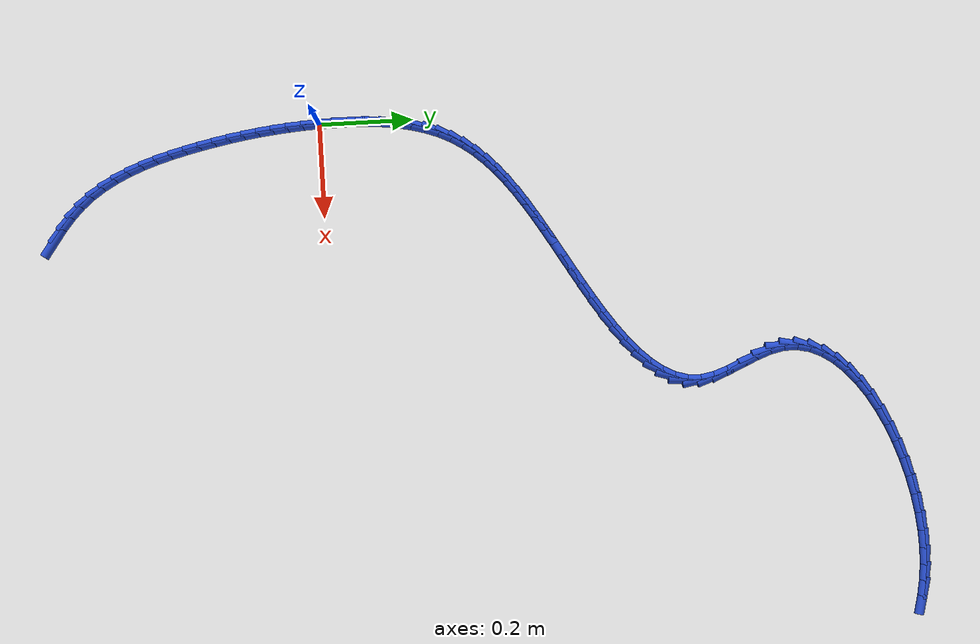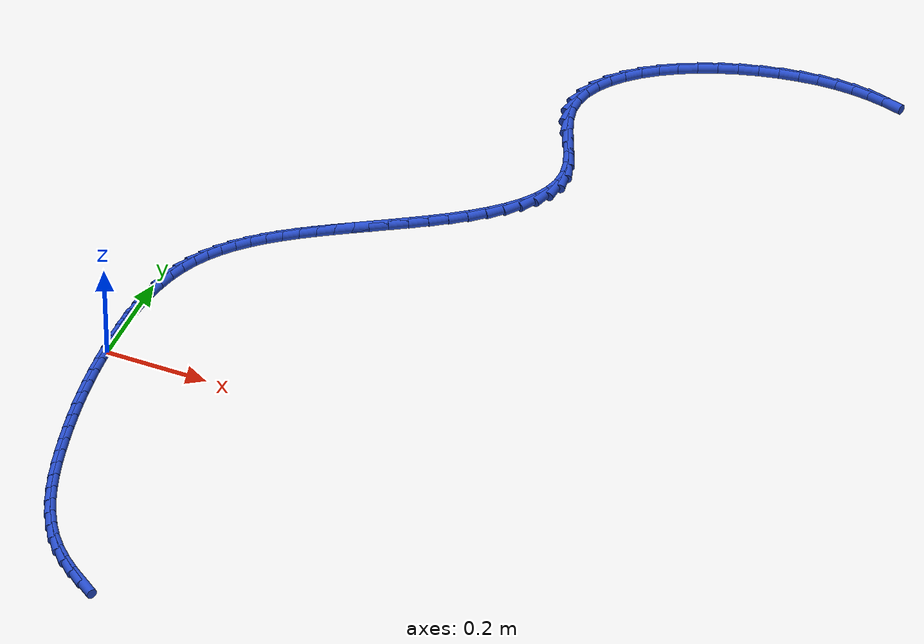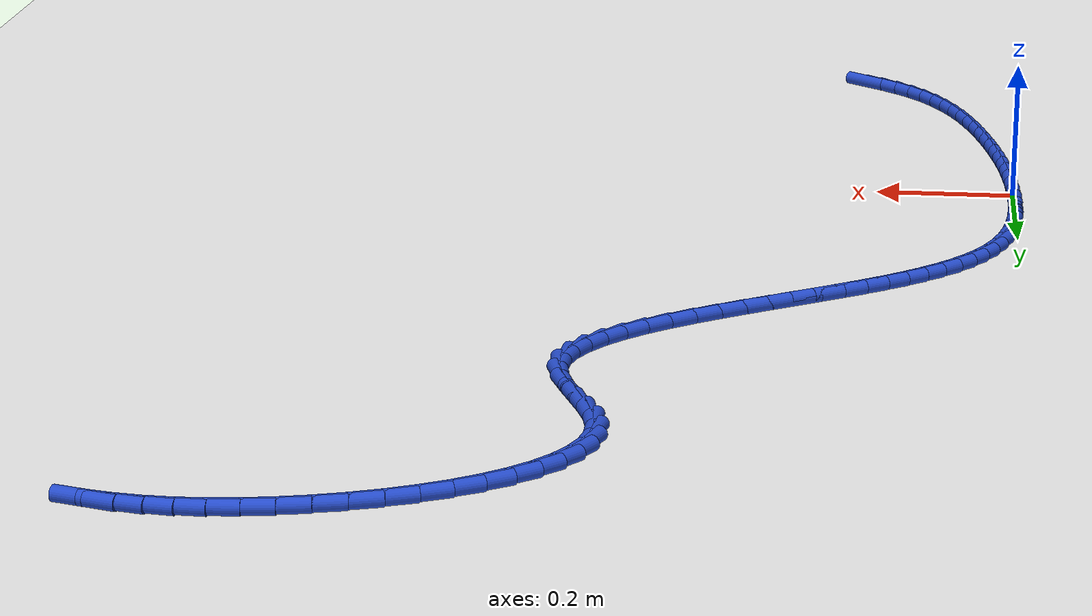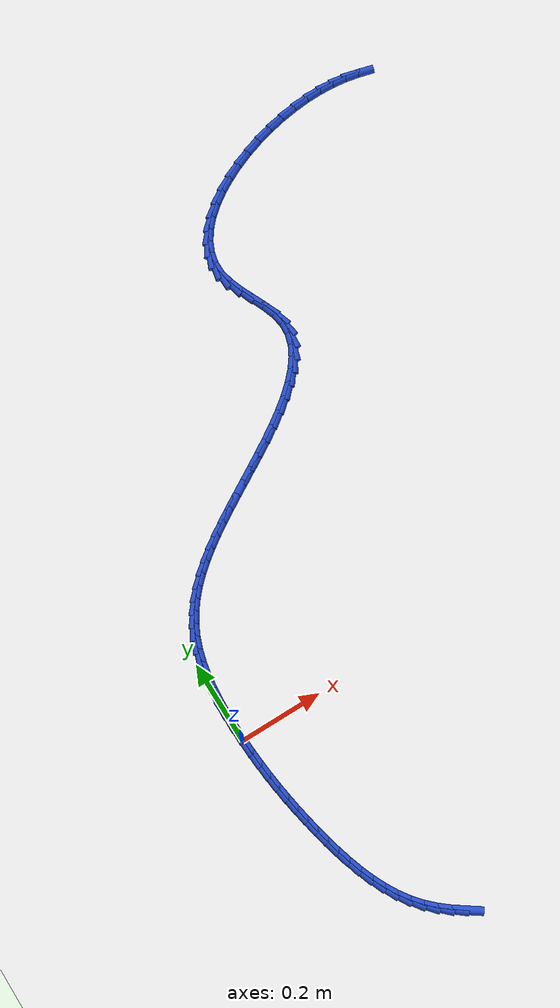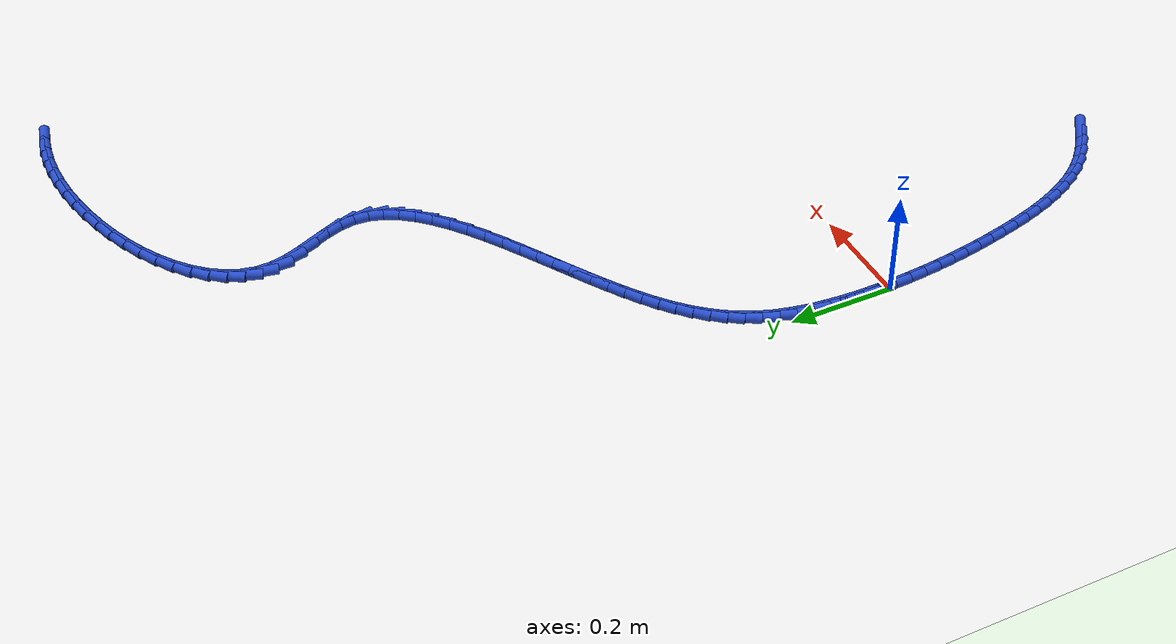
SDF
<sdf version="1.6">
 <world name="default">
  <model name="ground_plane">
   <static>1</static>
   <link name="link">
    <collision name="collision">
     <geometry><plane><normal>0 0 1</normal><size>100 100</size></plane></geometry>
     <surface><friction><ode><mu>100</mu><mu2>50</mu2></ode></friction></surface>
    </collision>
    <visual name="visual">
     <cast_shadows>0</cast_shadows>
     <geometry><plane><normal>0 0 1</normal><size>100 100</size></plane></geometry>
     <material>
      <script><uri>file://media/materials/scripts/gazebo.material</uri><name>Gazebo/WhiteGlow</name></script>
     </material>
    </visual>
   </link>
  </model>
  <model name="line">
   <link name="link_0">
    <pose>1.0625181290357943e-17 7.632783294297951e-17 0.01 0 1.57 -1.5450315939455772</pose>
    <collision name="collision">
     <geometry><cylinder><radius>0.01</radius><length>0.08</length></cylinder></geometry>
    </collision>
    <visual name="visual">
     <material>
      <script><name>Gazebo/Blue</name><uri>file://media/materials/scripts/gazebo.material</uri></script>
     </material>
     <geometry><cylinder><radius>0.01</radius><length>0.08</length></cylinder></geometry>
    </visual>
   </link>
   <link name="link_1">
    <pose>-0.0008484708974147878 0.032924197183430516 0.01 0 1.57 1.5680683495373235</pose>
    <collision name="collision">
     <geometry><cylinder><radius>0.01</radius><length>0.08</length></cylinder></geometry>
    </collision>
    <visual name="visual">
     <material>
      <script><name>Gazebo/Blue</name><uri>file://media/materials/scripts/gazebo.material</uri></script>
     </material>
     <geometry><cylinder><radius>0.01</radius><length>0.08</length></cylinder></geometry>
    </visual>
   </link>
   <link name="link_2">
    <pose>-0.0007579796227774928 0.0660956797944067 0.01 0 1.57 1.5330769587160282</pose>
    <collision name="collision">
     <geometry><cylinder><radius>0.01</radius><length>0.08</length></cylinder></geometry>
    </collision>
    <visual name="visual">
     <material>
      <script><name>Gazebo/Blue</name><uri>file://media/materials/scripts/gazebo.material</uri></script>
     </material>
     <geometry><cylinder><radius>0.01</radius><length>0.08</length></cylinder></geometry>
    </visual>
   </link>
   <link name="link_3">
    <pose>0.0004919246648883151 0.09921689914808471 0.01 0 1.57 1.4907269644413075</pose>
    <collision name="collision">
     <geometry><cylinder><radius>0.01</radius><length>0.08</length></cylinder></geometry>
    </collision>
    <visual name="visual">
     <material>
      <script><name>Gazebo/Blue</name><uri>file://media/materials/scripts/gazebo.material</uri></script>
     </material>
     <geometry><cylinder><radius>0.01</radius><length>0.08</length></cylinder></geometry>
    </visual>
   </link>
   <link name="link_4">
    <pose>0.0031216928065590597 0.13199030655962074 0.01 0 1.57 1.439886070392241</pose>
    <collision name="collision">
     <geometry><cylinder><radius>0.01</radius><length>0.08</length></cylinder></geometry>
    </collision>
    <visual name="visual">
     <material>
      <script><name>Gazebo/Blue</name><uri>file://media/materials/scripts/gazebo.material</uri></script>
     </material>
     <geometry><cylinder><radius>0.01</radius><length>0.08</length></cylinder></geometry>
    </visual>
   </link>
   <link name="link_5">
    <pose>0.007351775643211166 0.1641183533441709 0.01 0 1.57 1.3791478052844761</pose>
    <collision name="collision">
     <geometry><cylinder><radius>0.01</radius><length>0.08</length></cylinder></geometry>
    </collision>
    <visual name="visual">
     <material>
      <script><name>Gazebo/Blue</name><uri>file://media/materials/scripts/gazebo.material</uri></script>
     </material>
     <geometry><cylinder><radius>0.01</radius><length>0.08</length></cylinder></geometry>
    </visual>
   </link>
   <link name="link_6">
    <pose>0.013402624015821053 0.19530349081689147 0.01 0 1.57 1.3068665840910743</pose>
    <collision name="collision">
     <geometry><cylinder><radius>0.01</radius><length>0.08</length></cylinder></geometry>
    </collision>
    <visual name="visual">
     <material>
      <script><name>Gazebo/Blue</name><uri>file://media/materials/scripts/gazebo.material</uri></script>
     </material>
     <geometry><cylinder><radius>0.01</radius><length>0.08</length></cylinder></geometry>
    </visual>
   </link>
   <link name="link_7">
    <pose>0.021494688765365148 0.22524817029293834 0.01 0 1.57 1.221278306727714</pose>
    <collision name="collision">
     <geometry><cylinder><radius>0.01</radius><length>0.08</length></cylinder></geometry>
    </collision>
    <visual name="visual">
     <material>
      <script><name>Gazebo/Blue</name><uri>file://media/materials/scripts/gazebo.material</uri></script>
     </material>
     <geometry><cylinder><radius>0.01</radius><length>0.08</length></cylinder></geometry>
    </visual>
   </link>
   <link name="link_8">
    <pose>0.031848420732819856 0.2536548430874677 0.01 0 1.57 1.122448645617586</pose>
    <collision name="collision">
     <geometry><cylinder><radius>0.01</radius><length>0.08</length></cylinder></geometry>
    </collision>
    <visual name="visual">
     <material>
      <script><name>Gazebo/Blue</name><uri>file://media/materials/scripts/gazebo.material</uri></script>
     </material>
     <geometry><cylinder><radius>0.01</radius><length>0.08</length></cylinder></geometry>
    </visual>
   </link>
   <link name="link_9">
    <pose>0.044650600942844926 0.2802695613152772 0.01 0 1.57 1.0224471368903416</pose>
    <collision name="collision">
     <geometry><cylinder><radius>0.01</radius><length>0.08</length></cylinder></geometry>
    </collision>
    <visual name="visual">
     <material>
      <script><name>Gazebo/Blue</name><uri>file://media/materials/scripts/gazebo.material</uri></script>
     </material>
     <geometry><cylinder><radius>0.01</radius><length>0.08</length></cylinder></geometry>
    </visual>
   </link>
   <link name="link_10">
    <pose>0.05984798389931778 0.30514919994041223 0.01 0 1.57 0.9291403538744517</pose>
    <collision name="collision">
     <geometry><cylinder><radius>0.01</radius><length>0.08</length></cylinder></geometry>
    </collision>
    <visual name="visual">
     <material>
      <script><name>Gazebo/Blue</name><uri>file://media/materials/scripts/gazebo.material</uri></script>
     </material>
     <geometry><cylinder><radius>0.01</radius><length>0.08</length></cylinder></geometry>
    </visual>
   </link>
   <link name="link_11">
    <pose>0.07728309836895332 0.3284856012650455 0.01 0 1.57 0.8448598932030486</pose>
    <collision name="collision">
     <geometry><cylinder><radius>0.01</radius><length>0.08</length></cylinder></geometry>
    </collision>
    <visual name="visual">
     <material>
      <script><name>Gazebo/Blue</name><uri>file://media/materials/scripts/gazebo.material</uri></script>
     </material>
     <geometry><cylinder><radius>0.01</radius><length>0.08</length></cylinder></geometry>
    </visual>
   </link>
   <link name="link_12">
    <pose>0.09679804924913331 0.3504711564818364 0.01 0 1.57 0.7709709987590738</pose>
    <collision name="collision">
     <geometry><cylinder><radius>0.01</radius><length>0.08</length></cylinder></geometry>
    </collision>
    <visual name="visual">
     <material>
      <script><name>Gazebo/Blue</name><uri>file://media/materials/scripts/gazebo.material</uri></script>
     </material>
     <geometry><cylinder><radius>0.01</radius><length>0.08</length></cylinder></geometry>
    </visual>
   </link>
   <link name="link_13">
    <pose>0.11823494143723934 0.3712982567834442 0.01 0 1.57 0.7079927795087475</pose>
    <collision name="collision">
     <geometry><cylinder><radius>0.01</radius><length>0.08</length></cylinder></geometry>
    </collision>
    <visual name="visual">
     <material>
      <script><name>Gazebo/Blue</name><uri>file://media/materials/scripts/gazebo.material</uri></script>
     </material>
     <geometry><cylinder><radius>0.01</radius><length>0.08</length></cylinder></geometry>
    </visual>
   </link>
   <link name="link_14">
    <pose>0.14143587983065312 0.39115929336252836 0.01 0 1.57 0.6558219254184303</pose>
    <collision name="collision">
     <geometry><cylinder><radius>0.01</radius><length>0.08</length></cylinder></geometry>
    </collision>
    <visual name="visual">
     <material>
      <script><name>Gazebo/Blue</name><uri>file://media/materials/scripts/gazebo.material</uri></script>
     </material>
     <geometry><cylinder><radius>0.01</radius><length>0.08</length></cylinder></geometry>
    </visual>
   </link>
   <link name="link_15">
    <pose>0.1662429693267564 0.4102466574117484 0.01 0 1.57 0.6139736487818335</pose>
    <collision name="collision">
     <geometry><cylinder><radius>0.01</radius><length>0.08</length></cylinder></geometry>
    </collision>
    <visual name="visual">
     <material>
      <script><name>Gazebo/Blue</name><uri>file://media/materials/scripts/gazebo.material</uri></script>
     </material>
     <geometry><cylinder><radius>0.01</radius><length>0.08</length></cylinder></geometry>
    </visual>
   </link>
   <link name="link_16">
    <pose>0.1924983148229308 0.42875274012376374 0.01 0 1.57 0.581778861898263</pose>
    <collision name="collision">
     <geometry><cylinder><radius>0.01</radius><length>0.08</length></cylinder></geometry>
    </collision>
    <visual name="visual">
     <material>
      <script><name>Gazebo/Blue</name><uri>file://media/materials/scripts/gazebo.material</uri></script>
     </material>
     <geometry><cylinder><radius>0.01</radius><length>0.08</length></cylinder></geometry>
    </visual>
   </link>
   <link name="link_17">
    <pose>0.2200440212165581 0.4468699326912337 0.01 0 1.57 0.5585199745004578</pose>
    <collision name="collision">
     <geometry><cylinder><radius>0.01</radius><length>0.08</length></cylinder></geometry>
    </collision>
    <visual name="visual">
     <material>
      <script><name>Gazebo/Blue</name><uri>file://media/materials/scripts/gazebo.material</uri></script>
     </material>
     <geometry><cylinder><radius>0.01</radius><length>0.08</length></cylinder></geometry>
    </visual>
   </link>
   <link name="link_18">
    <pose>0.24872219340501994 0.4647906263068178 0.01 0 1.57 0.5435118615986578</pose>
    <collision name="collision">
     <geometry><cylinder><radius>0.01</radius><length>0.08</length></cylinder></geometry>
    </collision>
    <visual name="visual">
     <material>
      <script><name>Gazebo/Blue</name><uri>file://media/materials/scripts/gazebo.material</uri></script>
     </material>
     <geometry><cylinder><radius>0.01</radius><length>0.08</length></cylinder></geometry>
    </visual>
   </link>
   <link name="link_19">
    <pose>0.2783749362856981 0.48270721216317536 0.01 0 1.57 0.5361424447199818</pose>
    <collision name="collision">
     <geometry><cylinder><radius>0.01</radius><length>0.08</length></cylinder></geometry>
    </collision>
    <visual name="visual">
     <material>
      <script><name>Gazebo/Blue</name><uri>file://media/materials/scripts/gazebo.material</uri></script>
     </material>
     <geometry><cylinder><radius>0.01</radius><length>0.08</length></cylinder></geometry>
    </visual>
   </link>
   <link name="link_20">
    <pose>0.3088443547559741 0.500812081452966 0.01 0 1.57 0.5358866651339143</pose>
    <collision name="collision">
     <geometry><cylinder><radius>0.01</radius><length>0.08</length></cylinder></geometry>
    </collision>
    <visual name="visual">
     <material>
      <script><name>Gazebo/Blue</name><uri>file://media/materials/scripts/gazebo.material</uri></script>
     </material>
     <geometry><cylinder><radius>0.01</radius><length>0.08</length></cylinder></geometry>
    </visual>
   </link>
   <link name="link_21">
    <pose>0.33997255371323 0.5192976253688489 0.01 0 1.57 0.5423041037000075</pose>
    <collision name="collision">
     <geometry><cylinder><radius>0.01</radius><length>0.08</length></cylinder></geometry>
    </collision>
    <visual name="visual">
     <material>
      <script><name>Gazebo/Blue</name><uri>file://media/materials/scripts/gazebo.material</uri></script>
     </material>
     <geometry><cylinder><radius>0.01</radius><length>0.08</length></cylinder></geometry>
    </visual>
   </link>
   <link name="link_22">
    <pose>0.3716016380548469 0.5383562351034835 0.01 0 1.57 0.5552104559346642</pose>
    <collision name="collision">
     <geometry><cylinder><radius>0.01</radius><length>0.08</length></cylinder></geometry>
    </collision>
    <visual name="visual">
     <material>
      <script><name>Gazebo/Blue</name><uri>file://media/materials/scripts/gazebo.material</uri></script>
     </material>
     <geometry><cylinder><radius>0.01</radius><length>0.08</length></cylinder></geometry>
    </visual>
   </link>
   <link name="link_23">
    <pose>0.4035504675887567 0.5581740081163631 0.01 0 1.57 0.5771610278812183</pose>
    <collision name="collision">
     <geometry><cylinder><radius>0.01</radius><length>0.08</length></cylinder></geometry>
    </collision>
    <visual name="visual">
     <material>
      <script><name>Gazebo/Blue</name><uri>file://media/materials/scripts/gazebo.material</uri></script>
     </material>
     <geometry><cylinder><radius>0.01</radius><length>0.08</length></cylinder></geometry>
    </visual>
   </link>
   <link name="link_24">
    <pose>0.4352969522460977 0.5788447278514872 0.01 0 1.57 0.6110136186493721</pose>
    <collision name="collision">
     <geometry><cylinder><radius>0.01</radius><length>0.08</length></cylinder></geometry>
    </collision>
    <visual name="visual">
     <material>
      <script><name>Gazebo/Blue</name><uri>file://media/materials/scripts/gazebo.material</uri></script>
     </material>
     <geometry><cylinder><radius>0.01</radius><length>0.08</length></cylinder></geometry>
    </visual>
   </link>
   <link name="link_25">
    <pose>0.46606000570500145 0.6003920531224032 0.01 0 1.57 0.6588139061211348</pose>
    <collision name="collision">
     <geometry><cylinder><radius>0.01</radius><length>0.08</length></cylinder></geometry>
    </collision>
    <visual name="visual">
     <material>
      <script><name>Gazebo/Blue</name><uri>file://media/materials/scripts/gazebo.material</uri></script>
     </material>
     <geometry><cylinder><radius>0.01</radius><length>0.08</length></cylinder></geometry>
    </visual>
   </link>
   <link name="link_26">
    <pose>0.49505207661092077 0.6228378923002408 0.01 0 1.57 0.723883744061787</pose>
    <collision name="collision">
     <geometry><cylinder><radius>0.01</radius><length>0.08</length></cylinder></geometry>
    </collision>
    <visual name="visual">
     <material>
      <script><name>Gazebo/Blue</name><uri>file://media/materials/scripts/gazebo.material</uri></script>
     </material>
     <geometry><cylinder><radius>0.01</radius><length>0.08</length></cylinder></geometry>
    </visual>
   </link>
   <link name="link_27">
    <pose>0.5214856136093086 0.6462041537561292 0.01 0 1.57 0.8111570701258786</pose>
    <collision name="collision">
     <geometry><cylinder><radius>0.01</radius><length>0.08</length></cylinder></geometry>
    </collision>
    <visual name="visual">
     <material>
      <script><name>Gazebo/Blue</name><uri>file://media/materials/scripts/gazebo.material</uri></script>
     </material>
     <geometry><cylinder><radius>0.01</radius><length>0.08</length></cylinder></geometry>
    </visual>
   </link>
   <link name="link_28">
    <pose>0.5445730653456173 0.6705127458611976 0.01 0 1.57 0.9273156854958221</pose>
    <collision name="collision">
     <geometry><cylinder><radius>0.01</radius><length>0.08</length></cylinder></geometry>
    </collision>
    <visual name="visual">
     <material>
      <script><name>Gazebo/Blue</name><uri>file://media/materials/scripts/gazebo.material</uri></script>
     </material>
     <geometry><cylinder><radius>0.01</radius><length>0.08</length></cylinder></geometry>
    </visual>
   </link>
   <link name="link_29">
    <pose>0.5635268804652999 0.6957855769865753 0.01 0 1.57 1.0800139831547968</pose>
    <collision name="collision">
     <geometry><cylinder><radius>0.01</radius><length>0.08</length></cylinder></geometry>
    </collision>
    <visual name="visual">
     <material>
      <script><name>Gazebo/Blue</name><uri>file://media/materials/scripts/gazebo.material</uri></script>
     </material>
     <geometry><cylinder><radius>0.01</radius><length>0.08</length></cylinder></geometry>
    </visual>
   </link>
   <link name="link_30">
    <pose>0.5775595076138088 0.7220445555033914 0.01 0 1.57 1.2745090172132927</pose>
    <collision name="collision">
     <geometry><cylinder><radius>0.01</radius><length>0.08</length></cylinder></geometry>
    </collision>
    <visual name="visual">
     <material>
      <script><name>Gazebo/Blue</name><uri>file://media/materials/scripts/gazebo.material</uri></script>
     </material>
     <geometry><cylinder><radius>0.01</radius><length>0.08</length></cylinder></geometry>
    </visual>
   </link>
   <link name="link_31">
    <pose>0.5858833954365971 0.7493115897827752 0.01 0 1.57 1.506299652841662</pose>
    <collision name="collision">
     <geometry><cylinder><radius>0.01</radius><length>0.08</length></cylinder></geometry>
    </collision>
    <visual name="visual">
     <material>
      <script><name>Gazebo/Blue</name><uri>file://media/materials/scripts/gazebo.material</uri></script>
     </material>
     <geometry><cylinder><radius>0.01</radius><length>0.08</length></cylinder></geometry>
    </visual>
   </link>
   <link name="link_32">
    <pose>0.587710992579117 0.7776085881958563 0.01 0 1.57 -1.396954214097311</pose>
    <collision name="collision">
     <geometry><cylinder><radius>0.01</radius><length>0.08</length></cylinder></geometry>
    </collision>
    <visual name="visual">
     <material>
      <script><name>Gazebo/Blue</name><uri>file://media/materials/scripts/gazebo.material</uri></script>
     </material>
     <geometry><cylinder><radius>0.01</radius><length>0.08</length></cylinder></geometry>
    </visual>
   </link>
   <link name="link_33">
    <pose>0.5825631102042446 0.8069220803345428 0.01 0 1.57 -1.2353781585562915</pose>
    <collision name="collision">
     <geometry><cylinder><radius>0.01</radius><length>0.08</length></cylinder></geometry>
    </collision>
    <visual name="visual">
     <material>
      <script><name>Gazebo/Blue</name><uri>file://media/materials/scripts/gazebo.material</uri></script>
     </material>
     <geometry><cylinder><radius>0.01</radius><length>0.08</length></cylinder></geometry>
    </visual>
   </link>
   <link name="link_34">
    <pose>0.5720798337416726 0.8369954490651901 0.01 0 1.57 -1.1596192470447129</pose>
    <collision name="collision">
     <geometry><cylinder><radius>0.01</radius><length>0.08</length></cylinder></geometry>
    </collision>
    <visual name="visual">
     <material>
      <script><name>Gazebo/Blue</name><uri>file://media/materials/scripts/gazebo.material</uri></script>
     </material>
     <geometry><cylinder><radius>0.01</radius><length>0.08</length></cylinder></geometry>
    </visual>
   </link>
   <link name="link_35">
    <pose>0.5587920275016804 0.867469877189067 0.01 0 1.57 -1.1526928461941084</pose>
    <collision name="collision">
     <geometry><cylinder><radius>0.01</radius><length>0.08</length></cylinder></geometry>
    </collision>
    <visual name="visual">
     <material>
      <script><name>Gazebo/Blue</name><uri>file://media/materials/scripts/gazebo.material</uri></script>
     </material>
     <geometry><cylinder><radius>0.01</radius><length>0.08</length></cylinder></geometry>
    </visual>
   </link>
   <link name="link_36">
    <pose>0.5452336360803327 0.8979861941027811 0.01 0 1.57 -1.2128854338016268</pose>
    <collision name="collision">
     <geometry><cylinder><radius>0.01</radius><length>0.08</length></cylinder></geometry>
    </collision>
    <visual name="visual">
     <material>
      <script><name>Gazebo/Blue</name><uri>file://media/materials/scripts/gazebo.material</uri></script>
     </material>
     <geometry><cylinder><radius>0.01</radius><length>0.08</length></cylinder></geometry>
    </visual>
   </link>
   <link name="link_37">
    <pose>0.533938604073693 0.9281852292029413 0.01 0 1.57 -1.353946783003777</pose>
    <collision name="collision">
     <geometry><cylinder><radius>0.01</radius><length>0.08</length></cylinder></geometry>
    </collision>
    <visual name="visual">
     <material>
      <script><name>Gazebo/Blue</name><uri>file://media/materials/scripts/gazebo.material</uri></script>
     </material>
     <geometry><cylinder><radius>0.01</radius><length>0.08</length></cylinder></geometry>
    </visual>
   </link>
   <link name="link_38">
    <pose>0.5274342516827468 0.95770836431507 0.01 0 1.57 -1.5666409314998242</pose>
    <collision name="collision">
     <geometry><cylinder><radius>0.01</radius><length>0.08</length></cylinder></geometry>
    </collision>
    <visual name="visual">
     <material>
      <script><name>Gazebo/Blue</name><uri>file://media/materials/scripts/gazebo.material</uri></script>
     </material>
     <geometry><cylinder><radius>0.01</radius><length>0.08</length></cylinder></geometry>
    </visual>
   </link>
   <link name="link_39">
    <pose>0.5273155464452515 0.9862747330538709 0.01 0 1.57 1.3567034762428667</pose>
    <collision name="collision">
     <geometry><cylinder><radius>0.01</radius><length>0.08</length></cylinder></geometry>
    </collision>
    <visual name="visual">
     <material>
      <script><name>Gazebo/Blue</name><uri>file://media/materials/scripts/gazebo.material</uri></script>
     </material>
     <geometry><cylinder><radius>0.01</radius><length>0.08</length></cylinder></geometry>
    </visual>
   </link>
   <link name="link_40">
    <pose>0.5332916888896341 1.0137607290116697 0.01 0 1.57 1.1569189082040678</pose>
    <collision name="collision">
     <geometry><cylinder><radius>0.01</radius><length>0.08</length></cylinder></geometry>
    </collision>
    <visual name="visual">
     <material>
      <script><name>Gazebo/Blue</name><uri>file://media/materials/scripts/gazebo.material</uri></script>
     </material>
     <geometry><cylinder><radius>0.01</radius><length>0.08</length></cylinder></geometry>
    </visual>
   </link>
   <link name="link_41">
    <pose>0.5448443693371267 1.0400617185647665 0.01 0 1.57 0.984548570773763</pose>
    <collision name="collision">
     <geometry><cylinder><radius>0.01</radius><length>0.08</length></cylinder></geometry>
    </collision>
    <visual name="visual">
     <material>
      <script><name>Gazebo/Blue</name><uri>file://media/materials/scripts/gazebo.material</uri></script>
     </material>
     <geometry><cylinder><radius>0.01</radius><length>0.08</length></cylinder></geometry>
    </visual>
   </link>
   <link name="link_42">
    <pose>0.5614552781089603 1.0650730680894596 0.01 0 1.57 0.8404321920779939</pose>
    <collision name="collision">
     <geometry><cylinder><radius>0.01</radius><length>0.08</length></cylinder></geometry>
    </collision>
    <visual name="visual">
     <material>
      <script><name>Gazebo/Blue</name><uri>file://media/materials/scripts/gazebo.material</uri></script>
     </material>
     <geometry><cylinder><radius>0.01</radius><length>0.08</length></cylinder></geometry>
    </visual>
   </link>
   <link name="link_43">
    <pose>0.5826061055263669 1.0886901439620487 0.01 0 1.57 0.7209026531881378</pose>
    <collision name="collision">
     <geometry><cylinder><radius>0.01</radius><length>0.08</length></cylinder></geometry>
    </collision>
    <visual name="visual">
     <material>
      <script><name>Gazebo/Blue</name><uri>file://media/materials/scripts/gazebo.material</uri></script>
     </material>
     <geometry><cylinder><radius>0.01</radius><length>0.08</length></cylinder></geometry>
    </visual>
   </link>
   <link name="link_44">
    <pose>0.6077785419105778 1.1108083125588326 0.01 0 1.57 0.6209870825993028</pose>
    <collision name="collision">
     <geometry><cylinder><radius>0.01</radius><length>0.08</length></cylinder></geometry>
    </collision>
    <visual name="visual">
     <material>
      <script><name>Gazebo/Blue</name><uri>file://media/materials/scripts/gazebo.material</uri></script>
     </material>
     <geometry><cylinder><radius>0.01</radius><length>0.08</length></cylinder></geometry>
    </visual>
   </link>
   <link name="link_45">
    <pose>0.6364542775828247 1.1313229402561102 0.01 0 1.57 0.5359956433028493</pose>
    <collision name="collision">
     <geometry><cylinder><radius>0.01</radius><length>0.08</length></cylinder></geometry>
    </collision>
    <visual name="visual">
     <material>
      <script><name>Gazebo/Blue</name><uri>file://media/materials/scripts/gazebo.material</uri></script>
     </material>
     <geometry><cylinder><radius>0.01</radius><length>0.08</length></cylinder></geometry>
    </visual>
   </link>
   <link name="link_46">
    <pose>0.6681150028643389 1.1501293934301813 0.01 0 1.57 0.46200400113984075</pose>
    <collision name="collision">
     <geometry><cylinder><radius>0.01</radius><length>0.08</length></cylinder></geometry>
    </collision>
    <visual name="visual">
     <material>
      <script><name>Gazebo/Blue</name><uri>file://media/materials/scripts/gazebo.material</uri></script>
     </material>
     <geometry><cylinder><radius>0.01</radius><length>0.08</length></cylinder></geometry>
    </visual>
   </link>
   <link name="link_47">
    <pose>0.7022424080763523 1.167123038457345 0.01 0 1.57 0.39584477258026385</pose>
    <collision name="collision">
     <geometry><cylinder><radius>0.01</radius><length>0.08</length></cylinder></geometry>
    </collision>
    <visual name="visual">
     <material>
      <script><name>Gazebo/Blue</name><uri>file://media/materials/scripts/gazebo.material</uri></script>
     </material>
     <geometry><cylinder><radius>0.01</radius><length>0.08</length></cylinder></geometry>
    </visual>
   </link>
   <link name="link_48">
    <pose>0.7383181835400964 1.1821992417138998 0.01 0 1.57 0.33494184119309933</pose>
    <collision name="collision">
     <geometry><cylinder><radius>0.01</radius><length>0.08</length></cylinder></geometry>
    </collision>
    <visual name="visual">
     <material>
      <script><name>Gazebo/Blue</name><uri>file://media/materials/scripts/gazebo.material</uri></script>
     </material>
     <geometry><cylinder><radius>0.01</radius><length>0.08</length></cylinder></geometry>
    </visual>
   </link>
   <link name="link_49">
    <pose>0.7758240195768021 1.1952533695761458 0.01 0 1.57 0.2771192331949611</pose>
    <collision name="collision">
     <geometry><cylinder><radius>0.01</radius><length>0.08</length></cylinder></geometry>
    </collision>
    <visual name="visual">
     <material>
      <script><name>Gazebo/Blue</name><uri>file://media/materials/scripts/gazebo.material</uri></script>
     </material>
     <geometry><cylinder><radius>0.01</radius><length>0.08</length></cylinder></geometry>
    </visual>
   </link>
   <link name="link_50">
    <pose>0.8142416065077023 1.206180788420382 0.01 0 1.57 0.2204214518289486</pose>
    <collision name="collision">
     <geometry><cylinder><radius>0.01</radius><length>0.08</length></cylinder></geometry>
    </collision>
    <visual name="visual">
     <material>
      <script><name>Gazebo/Blue</name><uri>file://media/materials/scripts/gazebo.material</uri></script>
     </material>
     <geometry><cylinder><radius>0.01</radius><length>0.08</length></cylinder></geometry>
    </visual>
   </link>
   <link name="link_51">
    <pose>0.853052634654027 1.214876864622907 0.01 0 1.57 0.1629448628683276</pose>
    <collision name="collision">
     <geometry><cylinder><radius>0.01</radius><length>0.08</length></cylinder></geometry>
    </collision>
    <visual name="visual">
     <material>
      <script><name>Gazebo/Blue</name><uri>file://media/materials/scripts/gazebo.material</uri></script>
     </material>
     <geometry><cylinder><radius>0.01</radius><length>0.08</length></cylinder></geometry>
    </visual>
   </link>
   <link name="link_52">
    <pose>0.891738794337009 1.22123696456002 0.01 0 1.57 0.10266570614472696</pose>
    <collision name="collision">
     <geometry><cylinder><radius>0.01</radius><length>0.08</length></cylinder></geometry>
    </collision>
    <visual name="visual">
     <material>
      <script><name>Gazebo/Blue</name><uri>file://media/materials/scripts/gazebo.material</uri></script>
     </material>
     <geometry><cylinder><radius>0.01</radius><length>0.08</length></cylinder></geometry>
    </visual>
   </link>
   <link name="link_53">
    <pose>0.929781775877879 1.225156454608021 0.01 0 1.57 0.03724391091592601</pose>
    <collision name="collision">
     <geometry><cylinder><radius>0.01</radius><length>0.08</length></cylinder></geometry>
    </collision>
    <visual name="visual">
     <material>
      <script><name>Gazebo/Blue</name><uri>file://media/materials/scripts/gazebo.material</uri></script>
     </material>
     <geometry><cylinder><radius>0.01</radius><length>0.08</length></cylinder></geometry>
    </visual>
   </link>
   <link name="link_54">
    <pose>0.9666632695978687 1.2265307011432078 0.01 0 1.57 -0.03509586694153524</pose>
    <collision name="collision">
     <geometry><cylinder><radius>0.01</radius><length>0.08</length></cylinder></geometry>
    </collision>
    <visual name="visual">
     <material>
      <script><name>Gazebo/Blue</name><uri>file://media/materials/scripts/gazebo.material</uri></script>
     </material>
     <geometry><cylinder><radius>0.01</radius><length>0.08</length></cylinder></geometry>
    </visual>
   </link>
   <link name="link_55">
    <pose>1.0019421744516641 1.225292048793278 0.01 0 1.57 -0.10928198007770407</pose>
    <collision name="collision">
     <geometry><cylinder><radius>0.01</radius><length>0.08</length></cylinder></geometry>
    </collision>
    <visual name="visual">
     <material>
      <script><name>Gazebo/Blue</name><uri>file://media/materials/scripts/gazebo.material</uri></script>
     </material>
     <geometry><cylinder><radius>0.01</radius><length>0.08</length></cylinder></geometry>
    </visual>
   </link>
   <link name="link_56">
    <pose>1.0356405928418024 1.2215946885362121 0.01 0 1.57 -0.18118980114431527</pose>
    <collision name="collision">
     <geometry><cylinder><radius>0.01</radius><length>0.08</length></cylinder></geometry>
    </collision>
    <visual name="visual">
     <material>
      <script><name>Gazebo/Blue</name><uri>file://media/materials/scripts/gazebo.material</uri></script>
     </material>
     <geometry><cylinder><radius>0.01</radius><length>0.08</length></cylinder></geometry>
    </visual>
   </link>
   <link name="link_57">
    <pose>1.0679525779578158 1.215675165345199 0.01 0 1.57 -0.24875651099920976</pose>
    <collision name="collision">
     <geometry><cylinder><radius>0.01</radius><length>0.08</length></cylinder></geometry>
    </collision>
    <visual name="visual">
     <material>
      <script><name>Gazebo/Blue</name><uri>file://media/materials/scripts/gazebo.material</uri></script>
     </material>
     <geometry><cylinder><radius>0.01</radius><length>0.08</length></cylinder></geometry>
    </visual>
   </link>
   <link name="link_220">
    <pose>0.2184892158146206 -0.5741044446517106 0.01 0 1.57 -0.6175302985633742</pose>
    <collision name="collision">
     <geometry><cylinder><radius>0.01</radius><length>0.08</length></cylinder></geometry>
    </collision>
    <visual name="visual">
     <material>
      <script><name>Gazebo/Blue</name><uri>file://media/materials/scripts/gazebo.material</uri></script>
     </material>
     <geometry><cylinder><radius>0.01</radius><length>0.08</length></cylinder></geometry>
    </visual>
   </link>
   <link name="link_221">
    <pose>0.19278961085193763 -0.5558529157859561 0.01 0 1.57 -0.689060004853702</pose>
    <collision name="collision">
     <geometry><cylinder><radius>0.01</radius><length>0.08</length></cylinder></geometry>
    </collision>
    <visual name="visual">
     <material>
      <script><name>Gazebo/Blue</name><uri>file://media/materials/scripts/gazebo.material</uri></script>
     </material>
     <geometry><cylinder><radius>0.01</radius><length>0.08</length></cylinder></geometry>
    </visual>
   </link>
   <link name="link_222">
    <pose>0.16875035744523242 -0.5360504118172766 0.01 0 1.57 -0.7736608949808713</pose>
    <collision name="collision">
     <geometry><cylinder><radius>0.01</radius><length>0.08</length></cylinder></geometry>
    </collision>
    <visual name="visual">
     <material>
      <script><name>Gazebo/Blue</name><uri>file://media/materials/scripts/gazebo.material</uri></script>
     </material>
     <geometry><cylinder><radius>0.01</radius><length>0.08</length></cylinder></geometry>
    </visual>
   </link>
   <link name="link_223">
    <pose>0.14664256622086122 -0.5144555934091879 0.01 0 1.57 -0.8705093892904279</pose>
    <collision name="collision">
     <geometry><cylinder><radius>0.01</radius><length>0.08</length></cylinder></geometry>
    </collision>
    <visual name="visual">
     <material>
      <script><name>Gazebo/Blue</name><uri>file://media/materials/scripts/gazebo.material</uri></script>
     </material>
     <geometry><cylinder><radius>0.01</radius><length>0.08</length></cylinder></geometry>
    </visual>
   </link>
   <link name="link_224">
    <pose>0.12673308870308944 -0.49083198933685895 0.01 0 1.57 -0.9689071195269127</pose>
    <collision name="collision">
     <geometry><cylinder><radius>0.01</radius><length>0.08</length></cylinder></geometry>
    </collision>
    <visual name="visual">
     <material>
      <script><name>Gazebo/Blue</name><uri>file://media/materials/scripts/gazebo.material</uri></script>
     </material>
     <geometry><cylinder><radius>0.01</radius><length>0.08</length></cylinder></geometry>
    </visual>
   </link>
   <link name="link_225">
    <pose>0.10909881630888242 -0.46516025090311075 0.01 0 1.57 -1.0553912442845652</pose>
    <collision name="collision">
     <geometry><cylinder><radius>0.01</radius><length>0.08</length></cylinder></geometry>
    </collision>
    <visual name="visual">
     <material>
      <script><name>Gazebo/Blue</name><uri>file://media/materials/scripts/gazebo.material</uri></script>
     </material>
     <geometry><cylinder><radius>0.01</radius><length>0.08</length></cylinder></geometry>
    </visual>
   </link>
   <link name="link_226">
    <pose>0.09355475979082113 -0.43772035642527884 0.01 0 1.57 -1.1293969288046481</pose>
    <collision name="collision">
     <geometry><cylinder><radius>0.01</radius><length>0.08</length></cylinder></geometry>
    </collision>
    <visual name="visual">
     <material>
      <script><name>Gazebo/Blue</name><uri>file://media/materials/scripts/gazebo.material</uri></script>
     </material>
     <geometry><cylinder><radius>0.01</radius><length>0.08</length></cylinder></geometry>
    </visual>
   </link>
   <link name="link_227">
    <pose>0.07989682023725855 -0.4088141263782906 0.01 0 1.57 -1.1917923835047697</pose>
    <collision name="collision">
     <geometry><cylinder><radius>0.01</radius><length>0.08</length></cylinder></geometry>
    </collision>
    <visual name="visual">
     <material>
      <script><name>Gazebo/Blue</name><uri>file://media/materials/scripts/gazebo.material</uri></script>
     </material>
     <geometry><cylinder><radius>0.01</radius><length>0.08</length></cylinder></geometry>
    </visual>
   </link>
   <link name="link_228">
    <pose>0.06792089873654783 -0.3787433812370735 0.01 0 1.57 -1.243619141970049</pose>
    <collision name="collision">
     <geometry><cylinder><radius>0.01</radius><length>0.08</length></cylinder></geometry>
    </collision>
    <visual name="visual">
     <material>
      <script><name>Gazebo/Blue</name><uri>file://media/materials/scripts/gazebo.material</uri></script>
     </material>
     <geometry><cylinder><radius>0.01</radius><length>0.08</length></cylinder></geometry>
    </visual>
   </link>
   <link name="link_229">
    <pose>0.05742289637704203 -0.34780994147655503 0.01 0 1.57 -1.285880646887557</pose>
    <collision name="collision">
     <geometry><cylinder><radius>0.01</radius><length>0.08</length></cylinder></geometry>
    </collision>
    <visual name="visual">
     <material>
      <script><name>Gazebo/Blue</name><uri>file://media/materials/scripts/gazebo.material</uri></script>
     </material>
     <geometry><cylinder><radius>0.01</radius><length>0.08</length></cylinder></geometry>
    </visual>
   </link>
   <link name="link_230">
    <pose>0.048198714247093974 -0.3163156275716616 0.01 0 1.57 -1.3194221830213315</pose>
    <collision name="collision">
     <geometry><cylinder><radius>0.01</radius><length>0.08</length></cylinder></geometry>
    </collision>
    <visual name="visual">
     <material>
      <script><name>Gazebo/Blue</name><uri>file://media/materials/scripts/gazebo.material</uri></script>
     </material>
     <geometry><cylinder><radius>0.01</radius><length>0.08</length></cylinder></geometry>
    </visual>
   </link>
   <link name="link_231">
    <pose>0.040044253435057235 -0.2845622599973226 0.01 0 1.57 -1.3448757465323167</pose>
    <collision name="collision">
     <geometry><cylinder><radius>0.01</radius><length>0.08</length></cylinder></geometry>
    </collision>
    <visual name="visual">
     <material>
      <script><name>Gazebo/Blue</name><uri>file://media/materials/scripts/gazebo.material</uri></script>
     </material>
     <geometry><cylinder><radius>0.01</radius><length>0.08</length></cylinder></geometry>
    </visual>
   </link>
   <link name="link_232">
    <pose>0.03275564621261984 -0.2528512072011534 0.01 0 1.57 -1.365043202634778</pose>
    <collision name="collision">
     <geometry><cylinder><radius>0.01</radius><length>0.08</length></cylinder></geometry>
    </collision>
    <visual name="visual">
     <material>
      <script><name>Gazebo/Blue</name><uri>file://media/materials/scripts/gazebo.material</uri></script>
     </material>
     <geometry><cylinder><radius>0.01</radius><length>0.08</length></cylinder></geometry>
    </visual>
   </link>
   <link name="link_233">
    <pose>0.026185870798187856 -0.22137268809477526 0.01 0 1.57 -1.3855686668032532</pose>
    <collision name="collision">
     <geometry><cylinder><radius>0.01</radius><length>0.08</length></cylinder></geometry>
    </collision>
    <visual name="visual">
     <material>
      <script><name>Gazebo/Blue</name><uri>file://media/materials/scripts/gazebo.material</uri></script>
     </material>
     <geometry><cylinder><radius>0.01</radius><length>0.08</length></cylinder></geometry>
    </visual>
   </link>
   <link name="link_234">
    <pose>0.020318818706467397 -0.19006094991584652 0.01 0 1.57 -1.4070708937711793</pose>
    <collision name="collision">
     <geometry><cylinder><radius>0.01</radius><length>0.08</length></cylinder></geometry>
    </collision>
    <visual name="visual">
     <material>
      <script><name>Gazebo/Blue</name><uri>file://media/materials/scripts/gazebo.material</uri></script>
     </material>
     <geometry><cylinder><radius>0.01</radius><length>0.08</length></cylinder></geometry>
    </visual>
   </link>
   <link name="link_235">
    <pose>0.015156745367224791 -0.15881433337296172 0.01 0 1.57 -1.4293436038319416</pose>
    <collision name="collision">
     <geometry><cylinder><radius>0.01</radius><length>0.08</length></cylinder></geometry>
    </collision>
    <visual name="visual">
     <material>
      <script><name>Gazebo/Blue</name><uri>file://media/materials/scripts/gazebo.material</uri></script>
     </material>
     <geometry><cylinder><radius>0.01</radius><length>0.08</length></cylinder></geometry>
    </visual>
   </link>
   <link name="link_236">
    <pose>0.010701906210226337 -0.12753117917471526 0.01 0 1.57 -1.4521584883118641</pose>
    <collision name="collision">
     <geometry><cylinder><radius>0.01</radius><length>0.08</length></cylinder></geometry>
    </collision>
    <visual name="visual">
     <material>
      <script><name>Gazebo/Blue</name><uri>file://media/materials/scripts/gazebo.material</uri></script>
     </material>
     <geometry><cylinder><radius>0.01</radius><length>0.08</length></cylinder></geometry>
    </visual>
   </link>
   <link name="link_237">
    <pose>0.006956556665238333 -0.0961098280297015 0.01 0 1.57 -1.475273373273269</pose>
    <collision name="collision">
     <geometry><cylinder><radius>0.01</radius><length>0.08</length></cylinder></geometry>
    </collision>
    <visual name="visual">
     <material>
      <script><name>Gazebo/Blue</name><uri>file://media/materials/scripts/gazebo.material</uri></script>
     </material>
     <geometry><cylinder><radius>0.01</radius><length>0.08</length></cylinder></geometry>
    </visual>
   </link>
   <link name="link_238">
    <pose>0.003922952162027011 -0.06444862064651409 0.01 0 1.57 -1.498441398333342</pose>
    <collision name="collision">
     <geometry><cylinder><radius>0.01</radius><length>0.08</length></cylinder></geometry>
    </collision>
    <visual name="visual">
     <material>
      <script><name>Gazebo/Blue</name><uri>file://media/materials/scripts/gazebo.material</uri></script>
     </material>
     <geometry><cylinder><radius>0.01</radius><length>0.08</length></cylinder></geometry>
    </visual>
   </link>
   <link name="link_239">
    <pose>0.0016033481303588323 -0.032445897733749035 0.01 0 1.57 -1.521420440949385</pose>
    <collision name="collision">
     <geometry><cylinder><radius>0.01</radius><length>0.08</length></cylinder></geometry>
    </collision>
    <visual name="visual">
     <material>
      <script><name>Gazebo/Blue</name><uri>file://media/materials/scripts/gazebo.material</uri></script>
     </material>
     <geometry><cylinder><radius>0.01</radius><length>0.08</length></cylinder></geometry>
    </visual>
   </link>
   <link name="link_240">
    <pose>1.951563910473908e-17 -3.469446951953614e-17 0.01 0 1.57 -1.5439819861872748</pose>
    <collision name="collision">
     <geometry><cylinder><radius>0.01</radius><length>0.08</length></cylinder></geometry>
    </collision>
    <visual name="visual">
     <material>
      <script><name>Gazebo/Blue</name><uri>file://media/materials/scripts/gazebo.material</uri></script>
     </material>
     <geometry><cylinder><radius>0.01</radius><length>0.08</length></cylinder></geometry>
    </visual>
   </link>
   <link name="link_241">
    <pose>-0.0008848367992831305 0.03299073184613854 0.01 0 1.57 -1.565918732519685</pose>
    <collision name="collision">
     <geometry><cylinder><radius>0.01</radius><length>0.08</length></cylinder></geometry>
    </collision>
    <visual name="visual">
     <material>
      <script><name>Gazebo/Blue</name><uri>file://media/materials/scripts/gazebo.material</uri></script>
     </material>
     <geometry><cylinder><radius>0.01</radius><length>0.08</length></cylinder></geometry>
    </visual>
   </link>
   <link name="link_242">
    <pose>-0.0010489068377243149 0.06662795709607225 0.01 0 1.57 -1.5550548836419564</pose>
    <collision name="collision">
     <geometry><cylinder><radius>0.01</radius><length>0.08</length></cylinder></geometry>
    </collision>
    <visual name="visual">
     <material>
      <script><name>Gazebo/Blue</name><uri>file://media/materials/scripts/gazebo.material</uri></script>
     </material>
     <geometry><cylinder><radius>0.01</radius><length>0.08</length></cylinder></geometry>
    </visual>
   </link>
  </model>
 </world>
</sdf>
